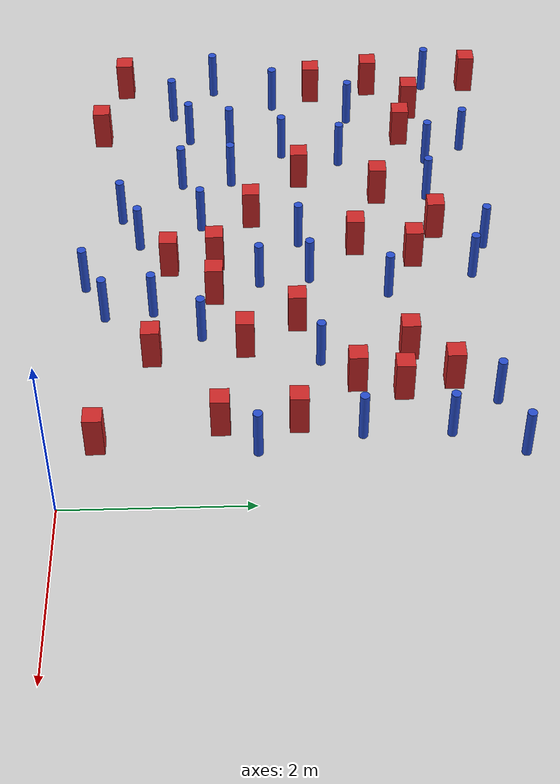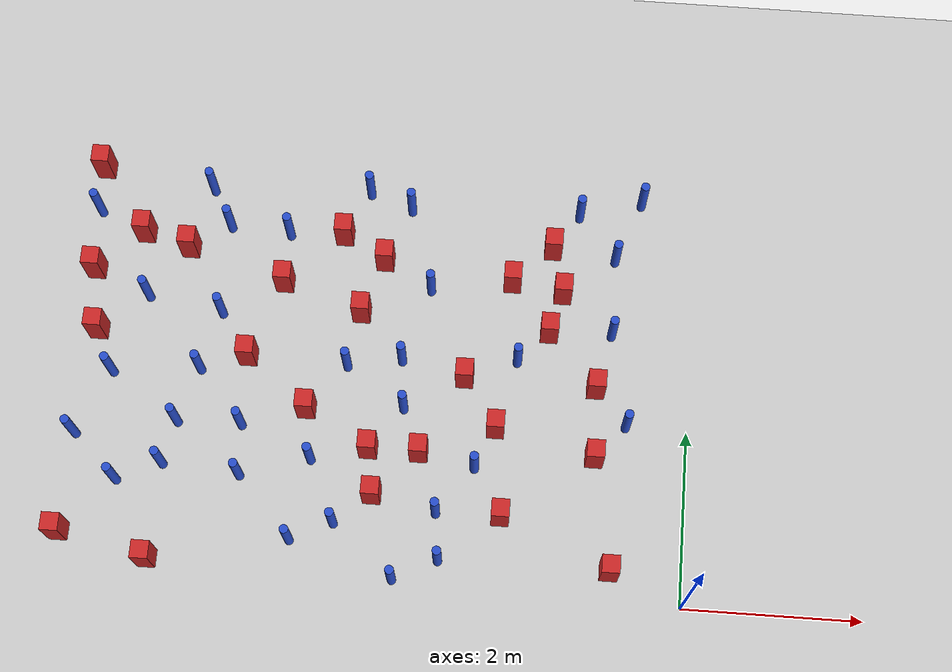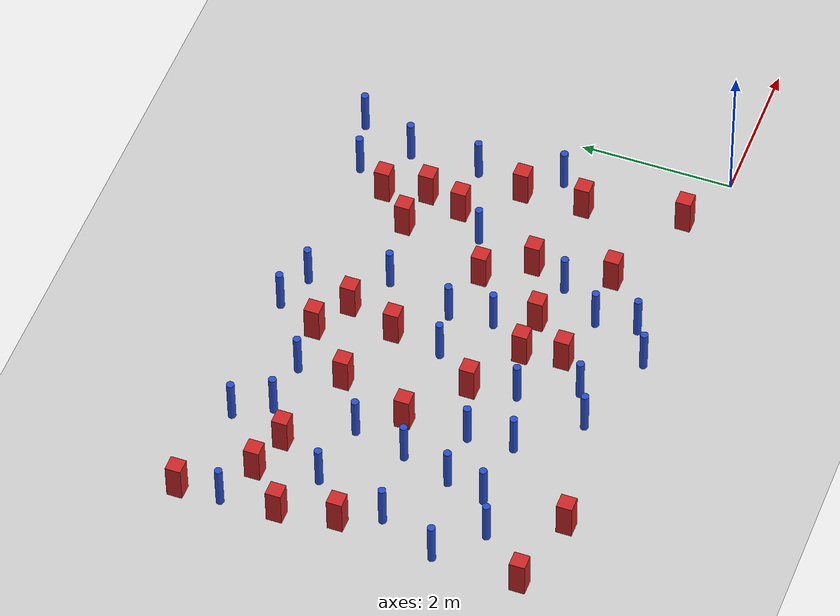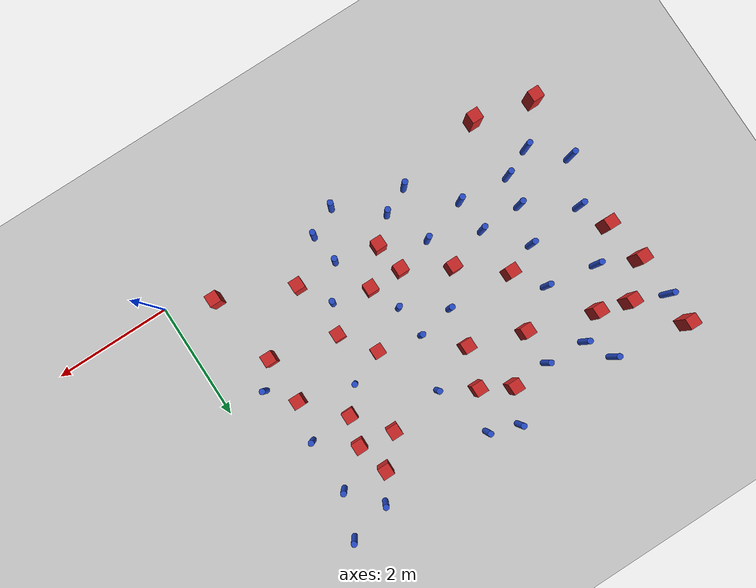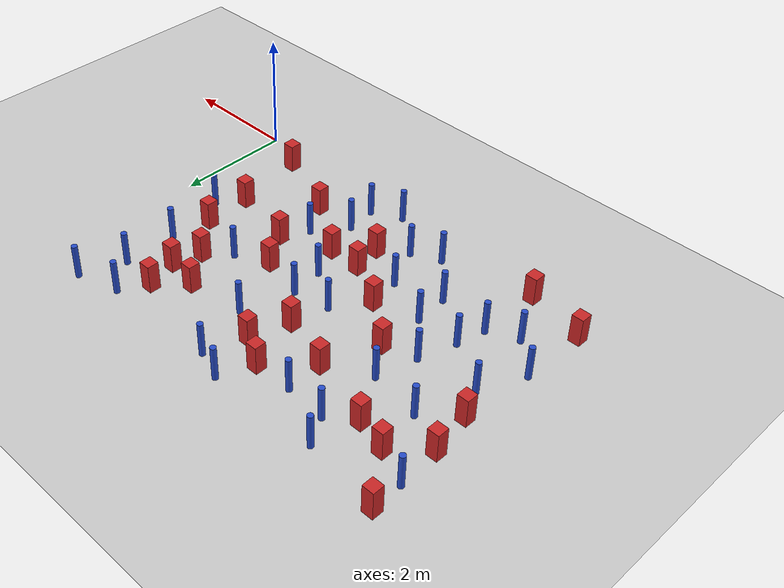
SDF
<sdf version="1.6">
 <world name="default">
  <model name="ground_plane">
   <static>1</static>
   <link name="link">
    <collision name="collision">
     <geometry><plane><normal>0 0 1</normal><size>100 100</size></plane></geometry>
     <surface><friction><ode><mu>100</mu><mu2>50</mu2></ode></friction></surface>
    </collision>
    <visual name="visual">
     <cast_shadows>0</cast_shadows>
     <geometry><plane><normal>0 0 1</normal><size>100 100</size></plane></geometry>
     <material>
      <ambient>1.0 1.0 1.0 1.0</ambient>
      <diffuse>0.8 0.8 0.8 1.0</diffuse>
      <specular>0.01 0.01 0.01 1.000000</specular>
     </material>
    </visual>
   </link>
  </model>
  <model name="square_post_obstacle1">
   <static>true</static>
   <pose>-5.89802046448 0.14127891868 1.91545236811e-07 -7.35059704564e-06 1.12565212e-07 2.39332434364e-05</pose>
   <link name="link">
    <pose>0 0 0.25 0 -0 0</pose>
    <inertial>
     <mass>100</mass>
     <inertia>
      <ixx>0.166667</ixx>
      <ixy>0</ixy>
      <ixz>0</ixz>
      <iyy>0.166667</iyy>
      <iyz>0</iyz>
      <izz>0.166667</izz>
     </inertia>
    </inertial>
    <collision name="collision"><geometry><box><size>.2 .2 .5</size></box></geometry></collision>
    <visual name="visual">
     <geometry><box><size>.2 .2 .5</size></box></geometry>
     <material>
      <script><name>Gazebo/Red</name><uri>file://media/materials/scripts/gazebo.material</uri></script>
     </material>
    </visual>
   </link>
  </model>
  <model name="square_post_obstacle5">
   <static>true</static>
   <pose>-3.56619881664 1.55040309767 1.91545236811e-07 -7.35059704564e-06 1.12565212e-07 2.39332434364e-05</pose>
   <link name="link">
    <pose>0 0 0.25 0 -0 0</pose>
    <inertial>
     <mass>100</mass>
     <inertia>
      <ixx>0.166667</ixx>
      <ixy>0</ixy>
      <ixz>0</ixz>
      <iyy>0.166667</iyy>
      <iyz>0</iyz>
      <izz>0.166667</izz>
     </inertia>
    </inertial>
    <collision name="collision"><geometry><box><size>.2 .2 .5</size></box></geometry></collision>
    <visual name="visual">
     <geometry><box><size>.2 .2 .5</size></box></geometry>
     <material>
      <script><name>Gazebo/Red</name><uri>file://media/materials/scripts/gazebo.material</uri></script>
     </material>
    </visual>
   </link>
  </model>
  <model name="square_post_obstacle10">
   <static>true</static>
   <pose>-1.03120379804 1.62567539473 1.91545236811e-07 -7.35059704564e-06 1.12565212e-07 2.39332434364e-05</pose>
   <link name="link">
    <pose>0 0 0.25 0 -0 0</pose>
    <inertial>
     <mass>100</mass>
     <inertia>
      <ixx>0.166667</ixx>
      <ixy>0</ixy>
      <ixz>0</ixz>
      <iyy>0.166667</iyy>
      <iyz>0</iyz>
      <izz>0.166667</izz>
     </inertia>
    </inertial>
    <collision name="collision"><geometry><box><size>.2 .2 .5</size></box></geometry></collision>
    <visual name="visual">
     <geometry><box><size>.2 .2 .5</size></box></geometry>
     <material>
      <script><name>Gazebo/Red</name><uri>file://media/materials/scripts/gazebo.material</uri></script>
     </material>
    </visual>
   </link>
  </model>
  <model name="square_post_obstacle12">
   <static>true</static>
   <pose>-5.84728091085 3.82834839286 1.91545236811e-07 -7.35059704564e-06 1.12565212e-07 2.39332434364e-05</pose>
   <link name="link">
    <pose>0 0 0.25 0 -0 0</pose>
    <inertial>
     <mass>100</mass>
     <inertia>
      <ixx>0.166667</ixx>
      <ixy>0</ixy>
      <ixz>0</ixz>
      <iyy>0.166667</iyy>
      <iyz>0</iyz>
      <izz>0.166667</izz>
     </inertia>
    </inertial>
    <collision name="collision"><geometry><box><size>.2 .2 .5</size></box></geometry></collision>
    <visual name="visual">
     <geometry><box><size>.2 .2 .5</size></box></geometry>
     <material>
      <script><name>Gazebo/Red</name><uri>file://media/materials/scripts/gazebo.material</uri></script>
     </material>
    </visual>
   </link>
  </model>
  <model name="pole_obstacle8">
   <static>true</static>
   <pose>-2.3621662867 1.4140505157 7.38925637345e-09 -8.471706928e-08 1.24976765152e-08 -1.74513093012e-07</pose>
   <link name="link">
    <pose>0 0 0.3 0 -0 0</pose>
    <inertial>
     <mass>1</mass>
     <inertia><ixx>0.145833</ixx><ixy>0</ixy><ixz>0</ixz><iyy>0.145833</iyy><iyz>0</iyz><izz>0.125</izz></inertia>
    </inertial>
    <collision name="collision">
     <geometry><cylinder><radius>0.05</radius><length>.6</length></cylinder></geometry>
    </collision>
    <visual name="visual">
     <geometry><cylinder><radius>0.05</radius><length>.6</length></cylinder></geometry>
     <material>
      <script><name>Gazebo/Blue</name><uri>file://media/materials/scripts/gazebo.material</uri></script>
     </material>
    </visual>
   </link>
  </model>
  <model name="square_post_obstacle19">
   <static>true</static>
   <pose>-5.0327952547 2.55150173611 1.91545236811e-07 -7.35059704564e-06 1.12565212e-07 2.39332434364e-05</pose>
   <link name="link">
    <pose>0 0 0.25 0 -0 0</pose>
    <inertial>
     <mass>100</mass>
     <inertia>
      <ixx>0.166667</ixx>
      <ixy>0</ixy>
      <ixz>0</ixz>
      <iyy>0.166667</iyy>
      <iyz>0</iyz>
      <izz>0.166667</izz>
     </inertia>
    </inertial>
    <collision name="collision"><geometry><box><size>.2 .2 .5</size></box></geometry></collision>
    <visual name="visual">
     <geometry><box><size>.2 .2 .5</size></box></geometry>
     <material>
      <script><name>Gazebo/Red</name><uri>file://media/materials/scripts/gazebo.material</uri></script>
     </material>
    </visual>
   </link>
  </model>
  <model name="pole_obstacle12">
   <static>true</static>
   <pose>-6.25506210652 3.19610129493 7.38925637345e-09 -8.47170692798e-08 1.24976764937e-08 -1.74513093023e-07</pose>
   <link name="link">
    <pose>0 0 0.3 0 -0 0</pose>
    <inertial>
     <mass>1</mass>
     <inertia><ixx>0.145833</ixx><ixy>0</ixy><ixz>0</ixz><iyy>0.145833</iyy><iyz>0</iyz><izz>0.125</izz></inertia>
    </inertial>
    <collision name="collision">
     <geometry><cylinder><radius>0.05</radius><length>.6</length></cylinder></geometry>
    </collision>
    <visual name="visual">
     <geometry><cylinder><radius>0.05</radius><length>.6</length></cylinder></geometry>
     <material>
      <script><name>Gazebo/Blue</name><uri>file://media/materials/scripts/gazebo.material</uri></script>
     </material>
    </visual>
   </link>
  </model>
  <model name="square_post_obstacle29">
   <static>true</static>
   <pose>-2.07568713311 3.65791688038 1.91545236811e-07 -7.35059704564e-06 1.12565212e-07 2.39332434364e-05</pose>
   <link name="link">
    <pose>0 0 0.25 0 -0 0</pose>
    <inertial>
     <mass>100</mass>
     <inertia>
      <ixx>0.166667</ixx>
      <ixy>0</ixy>
      <ixz>0</ixz>
      <iyy>0.166667</iyy>
      <iyz>0</iyz>
      <izz>0.166667</izz>
     </inertia>
    </inertial>
    <collision name="collision"><geometry><box><size>.2 .2 .5</size></box></geometry></collision>
    <visual name="visual">
     <geometry><box><size>.2 .2 .5</size></box></geometry>
     <material>
      <script><name>Gazebo/Red</name><uri>file://media/materials/scripts/gazebo.material</uri></script>
     </material>
    </visual>
   </link>
  </model>
  <model name="pole_obstacle33">
   <static>true</static>
   <pose>-2.69194967983 0.335135781408 7.38925637345e-09 -8.471706928e-08 1.24976765172e-08 -1.74513093013e-07</pose>
   <link name="link">
    <pose>0 0 0.3 0 -0 0</pose>
    <inertial>
     <mass>1</mass>
     <inertia><ixx>0.145833</ixx><ixy>0</ixy><ixz>0</ixz><iyy>0.145833</iyy><iyz>0</iyz><izz>0.125</izz></inertia>
    </inertial>
    <collision name="collision">
     <geometry><cylinder><radius>0.05</radius><length>.6</length></cylinder></geometry>
    </collision>
    <visual name="visual">
     <geometry><cylinder><radius>0.05</radius><length>.6</length></cylinder></geometry>
     <material>
      <script><name>Gazebo/Blue</name><uri>file://media/materials/scripts/gazebo.material</uri></script>
     </material>
    </visual>
   </link>
  </model>
  <model name="square_post_obstacle36">
   <static>true</static>
   <pose>-0.806339165267 0.348625529439 1.91545236811e-07 -7.35059704564e-06 1.12565212e-07 2.39332434364e-05</pose>
   <link name="link">
    <pose>0 0 0.25 0 -0 0</pose>
    <inertial>
     <mass>100</mass>
     <inertia>
      <ixx>0.166667</ixx>
      <ixy>0</ixy>
      <ixz>0</ixz>
      <iyy>0.166667</iyy>
      <iyz>0</iyz>
      <izz>0.166667</izz>
     </inertia>
    </inertial>
    <collision name="collision"><geometry><box><size>.2 .2 .5</size></box></geometry></collision>
    <visual name="visual">
     <geometry><box><size>.2 .2 .5</size></box></geometry>
     <material>
      <script><name>Gazebo/Red</name><uri>file://media/materials/scripts/gazebo.material</uri></script>
     </material>
    </visual>
   </link>
  </model>
  <model name="pole_obstacle38">
   <static>true</static>
   <pose>-5.38920874787 3.05112737467 7.38925637345e-09 -8.47170692798e-08 1.24976764937e-08 -1.74513093023e-07</pose>
   <link name="link">
    <pose>0 0 0.3 0 -0 0</pose>
    <inertial>
     <mass>1</mass>
     <inertia><ixx>0.145833</ixx><ixy>0</ixy><ixz>0</ixz><iyy>0.145833</iyy><iyz>0</iyz><izz>0.125</izz></inertia>
    </inertial>
    <collision name="collision">
     <geometry><cylinder><radius>0.05</radius><length>.6</length></cylinder></geometry>
    </collision>
    <visual name="visual">
     <geometry><cylinder><radius>0.05</radius><length>.6</length></cylinder></geometry>
     <material>
      <script><name>Gazebo/Blue</name><uri>file://media/materials/scripts/gazebo.material</uri></script>
     </material>
    </visual>
   </link>
  </model>
  <model name="square_post_obstacle40">
   <static>true</static>
   <pose>-4.06551418359 4.10627776106 1.91545236811e-07 -7.35059704564e-06 1.12565212e-07 2.39332434364e-05</pose>
   <link name="link">
    <pose>0 0 0.25 0 -0 0</pose>
    <inertial>
     <mass>100</mass>
     <inertia>
      <ixx>0.166667</ixx>
      <ixy>0</ixy>
      <ixz>0</ixz>
      <iyy>0.166667</iyy>
      <iyz>0</iyz>
      <izz>0.166667</izz>
     </inertia>
    </inertial>
    <collision name="collision"><geometry><box><size>.2 .2 .5</size></box></geometry></collision>
    <visual name="visual">
     <geometry><box><size>.2 .2 .5</size></box></geometry>
     <material>
      <script><name>Gazebo/Red</name><uri>file://media/materials/scripts/gazebo.material</uri></script>
     </material>
    </visual>
   </link>
  </model>
  <model name="pole_obstacle50">
   <static>true</static>
   <pose>-4.98392106543 1.14562655888 7.38925637345e-09 -8.471706928e-08 1.24976765134e-08 -1.74513093015e-07</pose>
   <link name="link">
    <pose>0 0 0.3 0 -0 0</pose>
    <inertial>
     <mass>1</mass>
     <inertia><ixx>0.145833</ixx><ixy>0</ixy><ixz>0</ixz><iyy>0.145833</iyy><iyz>0</iyz><izz>0.125</izz></inertia>
    </inertial>
    <collision name="collision">
     <geometry><cylinder><radius>0.05</radius><length>.6</length></cylinder></geometry>
    </collision>
    <visual name="visual">
     <geometry><cylinder><radius>0.05</radius><length>.6</length></cylinder></geometry>
     <material>
      <script><name>Gazebo/Blue</name><uri>file://media/materials/scripts/gazebo.material</uri></script>
     </material>
    </visual>
   </link>
  </model>
  <model name="square_post_obstacle63">
   <static>true</static>
   <pose>-2.99653288205 1.54797497478 1.91545236811e-07 -7.35059704564e-06 1.12565212e-07 2.39332434364e-05</pose>
   <link name="link">
    <pose>0 0 0.25 0 -0 0</pose>
    <inertial>
     <mass>100</mass>
     <inertia>
      <ixx>0.166667</ixx>
      <ixy>0</ixy>
      <ixz>0</ixz>
      <iyy>0.166667</iyy>
      <iyz>0</iyz>
      <izz>0.166667</izz>
     </inertia>
    </inertial>
    <collision name="collision"><geometry><box><size>.2 .2 .5</size></box></geometry></collision>
    <visual name="visual">
     <geometry><box><size>.2 .2 .5</size></box></geometry>
     <material>
      <script><name>Gazebo/Red</name><uri>file://media/materials/scripts/gazebo.material</uri></script>
     </material>
    </visual>
   </link>
  </model>
  <model name="square_post_obstacle65">
   <static>true</static>
   <pose>-6.96691377876 4.76394677034 1.91545236811e-07 -7.35059704564e-06 1.12565212e-07 2.39332434364e-05</pose>
   <link name="link">
    <pose>0 0 0.25 0 -0 0</pose>
    <inertial>
     <mass>100</mass>
     <inertia>
      <ixx>0.166667</ixx>
      <ixy>0</ixy>
      <ixz>0</ixz>
      <iyy>0.166667</iyy>
      <iyz>0</iyz>
      <izz>0.166667</izz>
     </inertia>
    </inertial>
    <collision name="collision"><geometry><box><size>.2 .2 .5</size></box></geometry></collision>
    <visual name="visual">
     <geometry><box><size>.2 .2 .5</size></box></geometry>
     <material>
      <script><name>Gazebo/Red</name><uri>file://media/materials/scripts/gazebo.material</uri></script>
     </material>
    </visual>
   </link>
  </model>
  <model name="square_post_obstacle71">
   <static>true</static>
   <pose>-6.38737366084 3.98072390192 1.91545236811e-07 -7.35059704564e-06 1.12565212e-07 2.39332434364e-05</pose>
   <link name="link">
    <pose>0 0 0.25 0 -0 0</pose>
    <inertial>
     <mass>100</mass>
     <inertia>
      <ixx>0.166667</ixx>
      <ixy>0</ixy>
      <ixz>0</ixz>
      <iyy>0.166667</iyy>
      <iyz>0</iyz>
      <izz>0.166667</izz>
     </inertia>
    </inertial>
    <collision name="collision"><geometry><box><size>.2 .2 .5</size></box></geometry></collision>
    <visual name="visual">
     <geometry><box><size>.2 .2 .5</size></box></geometry>
     <material>
      <script><name>Gazebo/Red</name><uri>file://media/materials/scripts/gazebo.material</uri></script>
     </material>
    </visual>
   </link>
  </model>
  <model name="pole_obstacle74">
   <static>true</static>
   <pose>-5.65626649433 4.57689478626 7.38925637345e-09 -8.47170692796e-08 1.24976764786e-08 -1.74513093032e-07</pose>
   <link name="link">
    <pose>0 0 0.3 0 -0 0</pose>
    <inertial>
     <mass>1</mass>
     <inertia><ixx>0.145833</ixx><ixy>0</ixy><ixz>0</ixz><iyy>0.145833</iyy><iyz>0</iyz><izz>0.125</izz></inertia>
    </inertial>
    <collision name="collision">
     <geometry><cylinder><radius>0.05</radius><length>.6</length></cylinder></geometry>
    </collision>
    <visual name="visual">
     <geometry><cylinder><radius>0.05</radius><length>.6</length></cylinder></geometry>
     <material>
      <script><name>Gazebo/Blue</name><uri>file://media/materials/scripts/gazebo.material</uri></script>
     </material>
    </visual>
   </link>
  </model>
  <model name="pole_obstacle79">
   <static>true</static>
   <pose>-3.18137896061 0.0899771715534 7.38925637345e-09 -8.47170692794e-08 1.24976764492e-08 -1.74513093038e-07</pose>
   <link name="link">
    <pose>0 0 0.3 0 -0 0</pose>
    <inertial>
     <mass>1</mass>
     <inertia><ixx>0.145833</ixx><ixy>0</ixy><ixz>0</ixz><iyy>0.145833</iyy><iyz>0</iyz><izz>0.125</izz></inertia>
    </inertial>
    <collision name="collision">
     <geometry><cylinder><radius>0.05</radius><length>.6</length></cylinder></geometry>
    </collision>
    <visual name="visual">
     <geometry><cylinder><radius>0.05</radius><length>.6</length></cylinder></geometry>
     <material>
      <script><name>Gazebo/Blue</name><uri>file://media/materials/scripts/gazebo.material</uri></script>
     </material>
    </visual>
   </link>
  </model>
  <model name="pole_obstacle83">
   <static>true</static>
   <pose>-4.35315540006 0.451388426823 7.38925637345e-09 -8.47170692799e-08 1.24976765124e-08 -1.74513093015e-07</pose>
   <link name="link">
    <pose>0 0 0.3 0 -0 0</pose>
    <inertial>
     <mass>1</mass>
     <inertia><ixx>0.145833</ixx><ixy>0</ixy><ixz>0</ixz><iyy>0.145833</iyy><iyz>0</iyz><izz>0.125</izz></inertia>
    </inertial>
    <collision name="collision">
     <geometry><cylinder><radius>0.05</radius><length>.6</length></cylinder></geometry>
    </collision>
    <visual name="visual">
     <geometry><cylinder><radius>0.05</radius><length>.6</length></cylinder></geometry>
     <material>
      <script><name>Gazebo/Blue</name><uri>file://media/materials/scripts/gazebo.material</uri></script>
     </material>
    </visual>
   </link>
  </model>
  <model name="pole_obstacle94">
   <static>true</static>
   <pose>-1.34233454507 4.54161761571 7.38925637345e-09 -8.47170692799e-08 1.24976765033e-08 -1.74513093018e-07</pose>
   <link name="link">
    <pose>0 0 0.3 0 -0 0</pose>
    <inertial>
     <mass>1</mass>
     <inertia><ixx>0.145833</ixx><ixy>0</ixy><ixz>0</ixz><iyy>0.145833</iyy><iyz>0</iyz><izz>0.125</izz></inertia>
    </inertial>
    <collision name="collision">
     <geometry><cylinder><radius>0.05</radius><length>.6</length></cylinder></geometry>
    </collision>
    <visual name="visual">
     <geometry><cylinder><radius>0.05</radius><length>.6</length></cylinder></geometry>
     <material>
      <script><name>Gazebo/Blue</name><uri>file://media/materials/scripts/gazebo.material</uri></script>
     </material>
    </visual>
   </link>
  </model>
  <model name="square_post_obstacle87">
   <static>true</static>
   <pose>-2.15664024649 1.88904400403 1.91545236811e-07 -7.35059704564e-06 1.12565212e-07 2.39332434364e-05</pose>
   <link name="link">
    <pose>0 0 0.25 0 -0 0</pose>
    <inertial>
     <mass>100</mass>
     <inertia>
      <ixx>0.166667</ixx>
      <ixy>0</ixy>
      <ixz>0</ixz>
      <iyy>0.166667</iyy>
      <iyz>0</iyz>
      <izz>0.166667</izz>
     </inertia>
    </inertial>
    <collision name="collision"><geometry><box><size>.2 .2 .5</size></box></geometry></collision>
    <visual name="visual">
     <geometry><box><size>.2 .2 .5</size></box></geometry>
     <material>
      <script><name>Gazebo/Red</name><uri>file://media/materials/scripts/gazebo.material</uri></script>
     </material>
    </visual>
   </link>
  </model>
  <model name="pole_obstacle116">
   <static>true</static>
   <pose>-6.35658932151 0.999298245735 7.38925637345e-09 -8.471706928e-08 1.24976765166e-08 -1.74513093011e-07</pose>
   <link name="link">
    <pose>0 0 0.3 0 -0 0</pose>
    <inertial>
     <mass>1</mass>
     <inertia><ixx>0.145833</ixx><ixy>0</ixy><ixz>0</ixz><iyy>0.145833</iyy><iyz>0</iyz><izz>0.125</izz></inertia>
    </inertial>
    <collision name="collision">
     <geometry><cylinder><radius>0.05</radius><length>.6</length></cylinder></geometry>
    </collision>
    <visual name="visual">
     <geometry><cylinder><radius>0.05</radius><length>.6</length></cylinder></geometry>
     <material>
      <script><name>Gazebo/Blue</name><uri>file://media/materials/scripts/gazebo.material</uri></script>
     </material>
    </visual>
   </link>
  </model>
  <model name="square_post_obstacle105">
   <static>true</static>
   <pose>-6.7815753196 2.75399989633 1.91545236811e-07 -7.35059704564e-06 1.12565212e-07 2.39332434364e-05</pose>
   <link name="link">
    <pose>0 0 0.25 0 -0 0</pose>
    <inertial>
     <mass>100</mass>
     <inertia>
      <ixx>0.166667</ixx>
      <ixy>0</ixy>
      <ixz>0</ixz>
      <iyy>0.166667</iyy>
      <iyz>0</iyz>
      <izz>0.166667</izz>
     </inertia>
    </inertial>
    <collision name="collision"><geometry><box><size>.2 .2 .5</size></box></geometry></collision>
    <visual name="visual">
     <geometry><box><size>.2 .2 .5</size></box></geometry>
     <material>
      <script><name>Gazebo/Red</name><uri>file://media/materials/scripts/gazebo.material</uri></script>
     </material>
    </visual>
   </link>
  </model>
  <model name="pole_obstacle129">
   <static>true</static>
   <pose>-6.5558696661 2.25894573723 7.38925637345e-09 -8.47170692798e-08 1.24976764937e-08 -1.74513093023e-07</pose>
   <link name="link">
    <pose>0 0 0.3 0 -0 0</pose>
    <inertial>
     <mass>1</mass>
     <inertia><ixx>0.145833</ixx><ixy>0</ixy><ixz>0</ixz><iyy>0.145833</iyy><iyz>0</iyz><izz>0.125</izz></inertia>
    </inertial>
    <collision name="collision">
     <geometry><cylinder><radius>0.05</radius><length>.6</length></cylinder></geometry>
    </collision>
    <visual name="visual">
     <geometry><cylinder><radius>0.05</radius><length>.6</length></cylinder></geometry>
     <material>
      <script><name>Gazebo/Blue</name><uri>file://media/materials/scripts/gazebo.material</uri></script>
     </material>
    </visual>
   </link>
  </model>
  <model name="square_post_obstacle116">
   <static>true</static>
   <pose>-1.63072883937 4.09948157398 1.91545236811e-07 -7.35059704564e-06 1.12565212e-07 2.39332434364e-05</pose>
   <link name="link">
    <pose>0 0 0.25 0 -0 0</pose>
    <inertial>
     <mass>100</mass>
     <inertia>
      <ixx>0.166667</ixx>
      <ixy>0</ixy>
      <ixz>0</ixz>
      <iyy>0.166667</iyy>
      <iyz>0</iyz>
      <izz>0.166667</izz>
     </inertia>
    </inertial>
    <collision name="collision"><geometry><box><size>.2 .2 .5</size></box></geometry></collision>
    <visual name="visual">
     <geometry><box><size>.2 .2 .5</size></box></geometry>
     <material>
      <script><name>Gazebo/Red</name><uri>file://media/materials/scripts/gazebo.material</uri></script>
     </material>
    </visual>
   </link>
  </model>
  <model name="pole_obstacle137">
   <static>true</static>
   <pose>-3.2091529136 2.05357644707 7.38925637345e-09 -8.471706928e-08 1.24976765098e-08 -1.74513093016e-07</pose>
   <link name="link">
    <pose>0 0 0.3 0 -0 0</pose>
    <inertial>
     <mass>1</mass>
     <inertia><ixx>0.145833</ixx><ixy>0</ixy><ixz>0</ixz><iyy>0.145833</iyy><iyz>0</iyz><izz>0.125</izz></inertia>
    </inertial>
    <collision name="collision">
     <geometry><cylinder><radius>0.05</radius><length>.6</length></cylinder></geometry>
    </collision>
    <visual name="visual">
     <geometry><cylinder><radius>0.05</radius><length>.6</length></cylinder></geometry>
     <material>
      <script><name>Gazebo/Blue</name><uri>file://media/materials/scripts/gazebo.material</uri></script>
     </material>
    </visual>
   </link>
  </model>
  <model name="pole_obstacle139">
   <static>true</static>
   <pose>-0.625194905554 4.74342718994 7.38925637345e-09 -8.471706928e-08 1.24976765086e-08 -1.74513093015e-07</pose>
   <link name="link">
    <pose>0 0 0.3 0 -0 0</pose>
    <inertial>
     <mass>1</mass>
     <inertia><ixx>0.145833</ixx><ixy>0</ixy><ixz>0</ixz><iyy>0.145833</iyy><iyz>0</iyz><izz>0.125</izz></inertia>
    </inertial>
    <collision name="collision">
     <geometry><cylinder><radius>0.05</radius><length>.6</length></cylinder></geometry>
    </collision>
    <visual name="visual">
     <geometry><cylinder><radius>0.05</radius><length>.6</length></cylinder></geometry>
     <material>
      <script><name>Gazebo/Blue</name><uri>file://media/materials/scripts/gazebo.material</uri></script>
     </material>
    </visual>
   </link>
  </model>
  <model name="square_post_obstacle124">
   <static>true</static>
   <pose>-4.30556201068 1.97046679576 1.91545236811e-07 -7.35059704564e-06 1.12565212e-07 2.39332434364e-05</pose>
   <link name="link">
    <pose>0 0 0.25 0 -0 0</pose>
    <inertial>
     <mass>100</mass>
     <inertia>
      <ixx>0.166667</ixx>
      <ixy>0</ixy>
      <ixz>0</ixz>
      <iyy>0.166667</iyy>
      <iyz>0</iyz>
      <izz>0.166667</izz>
     </inertia>
    </inertial>
    <collision name="collision"><geometry><box><size>.2 .2 .5</size></box></geometry></collision>
    <visual name="visual">
     <geometry><box><size>.2 .2 .5</size></box></geometry>
     <material>
      <script><name>Gazebo/Red</name><uri>file://media/materials/scripts/gazebo.material</uri></script>
     </material>
    </visual>
   </link>
  </model>
  <model name="square_post_obstacle125">
   <static>true</static>
   <pose>-1.05272874823 2.43726188475 1.91545236811e-07 -7.35059704564e-06 1.12565212e-07 2.39332434364e-05</pose>
   <link name="link">
    <pose>0 0 0.25 0 -0 0</pose>
    <inertial>
     <mass>100</mass>
     <inertia>
      <ixx>0.166667</ixx>
      <ixy>0</ixy>
      <ixz>0</ixz>
      <iyy>0.166667</iyy>
      <iyz>0</iyz>
      <izz>0.166667</izz>
     </inertia>
    </inertial>
    <collision name="collision"><geometry><box><size>.2 .2 .5</size></box></geometry></collision>
    <visual name="visual">
     <geometry><box><size>.2 .2 .5</size></box></geometry>
     <material>
      <script><name>Gazebo/Red</name><uri>file://media/materials/scripts/gazebo.material</uri></script>
     </material>
    </visual>
   </link>
  </model>
  <model name="pole_obstacle140">
   <static>true</static>
   <pose>-1.95937132909 2.69806054556 7.38925637345e-09 -8.471706928e-08 1.24976765192e-08 -1.7451309301e-07</pose>
   <link name="link">
    <pose>0 0 0.3 0 -0 0</pose>
    <inertial>
     <mass>1</mass>
     <inertia><ixx>0.145833</ixx><ixy>0</ixy><ixz>0</ixz><iyy>0.145833</iyy><iyz>0</iyz><izz>0.125</izz></inertia>
    </inertial>
    <collision name="collision">
     <geometry><cylinder><radius>0.05</radius><length>.6</length></cylinder></geometry>
    </collision>
    <visual name="visual">
     <geometry><cylinder><radius>0.05</radius><length>.6</length></cylinder></geometry>
     <material>
      <script><name>Gazebo/Blue</name><uri>file://media/materials/scripts/gazebo.material</uri></script>
     </material>
    </visual>
   </link>
  </model>
  <model name="pole_obstacle143">
   <static>true</static>
   <pose>-5.75045989783 1.71898323493 7.38925637345e-09 -8.471706928e-08 1.24976765134e-08 -1.74513093015e-07</pose>
   <link name="link">
    <pose>0 0 0.3 0 -0 0</pose>
    <inertial>
     <mass>1</mass>
     <inertia><ixx>0.145833</ixx><ixy>0</ixy><ixz>0</ixz><iyy>0.145833</iyy><iyz>0</iyz><izz>0.125</izz></inertia>
    </inertial>
    <collision name="collision">
     <geometry><cylinder><radius>0.05</radius><length>.6</length></cylinder></geometry>
    </collision>
    <visual name="visual">
     <geometry><cylinder><radius>0.05</radius><length>.6</length></cylinder></geometry>
     <material>
      <script><name>Gazebo/Blue</name><uri>file://media/materials/scripts/gazebo.material</uri></script>
     </material>
    </visual>
   </link>
  </model>
  <model name="square_post_obstacle136">
   <static>true</static>
   <pose>-6.90911771019 3.49146051048 1.91545236811e-07 -7.35059704564e-06 1.12565212e-07 2.39332434364e-05</pose>
   <link name="link">
    <pose>0 0 0.25 0 -0 0</pose>
    <inertial>
     <mass>100</mass>
     <inertia>
      <ixx>0.166667</ixx>
      <ixy>0</ixy>
      <ixz>0</ixz>
      <iyy>0.166667</iyy>
      <iyz>0</iyz>
      <izz>0.166667</izz>
     </inertia>
    </inertial>
    <collision name="collision"><geometry><box><size>.2 .2 .5</size></box></geometry></collision>
    <visual name="visual">
     <geometry><box><size>.2 .2 .5</size></box></geometry>
     <material>
      <script><name>Gazebo/Red</name><uri>file://media/materials/scripts/gazebo.material</uri></script>
     </material>
    </visual>
   </link>
  </model>
  <model name="pole_obstacle150">
   <static>true</static>
   <pose>-3.2723722878 2.62163641383 7.38925637345e-09 -8.47170692798e-08 1.24976764939e-08 -1.74513093025e-07</pose>
   <link name="link">
    <pose>0 0 0.3 0 -0 0</pose>
    <inertial>
     <mass>1</mass>
     <inertia><ixx>0.145833</ixx><ixy>0</ixy><ixz>0</ixz><iyy>0.145833</iyy><iyz>0</iyz><izz>0.125</izz></inertia>
    </inertial>
    <collision name="collision">
     <geometry><cylinder><radius>0.05</radius><length>.6</length></cylinder></geometry>
    </collision>
    <visual name="visual">
     <geometry><cylinder><radius>0.05</radius><length>.6</length></cylinder></geometry>
     <material>
      <script><name>Gazebo/Blue</name><uri>file://media/materials/scripts/gazebo.material</uri></script>
     </material>
    </visual>
   </link>
  </model>
  <model name="square_post_obstacle142">
   <static>true</static>
   <pose>-3.56682781437 3.82021896471 1.91545236811e-07 -7.35059704564e-06 1.12565212e-07 2.39332434364e-05</pose>
   <link name="link">
    <pose>0 0 0.25 0 -0 0</pose>
    <inertial>
     <mass>100</mass>
     <inertia>
      <ixx>0.166667</ixx>
      <ixy>0</ixy>
      <ixz>0</ixz>
      <iyy>0.166667</iyy>
      <iyz>0</iyz>
      <izz>0.166667</izz>
     </inertia>
    </inertial>
    <collision name="collision"><geometry><box><size>.2 .2 .5</size></box></geometry></collision>
    <visual name="visual">
     <geometry><box><size>.2 .2 .5</size></box></geometry>
     <material>
      <script><name>Gazebo/Red</name><uri>file://media/materials/scripts/gazebo.material</uri></script>
     </material>
    </visual>
   </link>
  </model>
  <model name="pole_obstacle154">
   <static>true</static>
   <pose>-3.00830110088 3.50284523727 7.38925637345e-09 -8.47170692798e-08 1.24976764939e-08 -1.74513093025e-07</pose>
   <link name="link">
    <pose>0 0 0.3 0 -0 0</pose>
    <inertial>
     <mass>1</mass>
     <inertia><ixx>0.145833</ixx><ixy>0</ixy><ixz>0</ixz><iyy>0.145833</iyy><iyz>0</iyz><izz>0.125</izz></inertia>
    </inertial>
    <collision name="collision">
     <geometry><cylinder><radius>0.05</radius><length>.6</length></cylinder></geometry>
    </collision>
    <visual name="visual">
     <geometry><cylinder><radius>0.05</radius><length>.6</length></cylinder></geometry>
     <material>
      <script><name>Gazebo/Blue</name><uri>file://media/materials/scripts/gazebo.material</uri></script>
     </material>
    </visual>
   </link>
  </model>
  <model name="square_post_obstacle150">
   <static>true</static>
   <pose>-6.911849789 0.376636833776 1.91545236811e-07 -7.35059704564e-06 1.12565212e-07 2.39332434364e-05</pose>
   <link name="link">
    <pose>0 0 0.25 0 -0 0</pose>
    <inertial>
     <mass>100</mass>
     <inertia>
      <ixx>0.166667</ixx>
      <ixy>0</ixy>
      <ixz>0</ixz>
      <iyy>0.166667</iyy>
      <iyz>0</iyz>
      <izz>0.166667</izz>
     </inertia>
    </inertial>
    <collision name="collision"><geometry><box><size>.2 .2 .5</size></box></geometry></collision>
    <visual name="visual">
     <geometry><box><size>.2 .2 .5</size></box></geometry>
     <material>
      <script><name>Gazebo/Red</name><uri>file://media/materials/scripts/gazebo.material</uri></script>
     </material>
    </visual>
   </link>
  </model>
  <model name="pole_obstacle161">
   <static>true</static>
   <pose>-6.94879399547 4.21399882412 7.38925637345e-09 -8.47170692796e-08 1.24976764786e-08 -1.74513093032e-07</pose>
   <link name="link">
    <pose>0 0 0.3 0 -0 0</pose>
    <inertial>
     <mass>1</mass>
     <inertia><ixx>0.145833</ixx><ixy>0</ixy><ixz>0</ixz><iyy>0.145833</iyy><iyz>0</iyz><izz>0.125</izz></inertia>
    </inertial>
    <collision name="collision">
     <geometry><cylinder><radius>0.05</radius><length>.6</length></cylinder></geometry>
    </collision>
    <visual name="visual">
     <geometry><cylinder><radius>0.05</radius><length>.6</length></cylinder></geometry>
     <material>
      <script><name>Gazebo/Blue</name><uri>file://media/materials/scripts/gazebo.material</uri></script>
     </material>
    </visual>
   </link>
  </model>
  <model name="pole_obstacle170">
   <static>true</static>
   <pose>-0.691239499996 2.01063745899 7.38925637345e-09 -8.47170692799e-08 1.24976765e-08 -1.7451309302e-07</pose>
   <link name="link">
    <pose>0 0 0.3 0 -0 0</pose>
    <inertial>
     <mass>1</mass>
     <inertia><ixx>0.145833</ixx><ixy>0</ixy><ixz>0</ixz><iyy>0.145833</iyy><iyz>0</iyz><izz>0.125</izz></inertia>
    </inertial>
    <collision name="collision">
     <geometry><cylinder><radius>0.05</radius><length>.6</length></cylinder></geometry>
    </collision>
    <visual name="visual">
     <geometry><cylinder><radius>0.05</radius><length>.6</length></cylinder></geometry>
     <material>
      <script><name>Gazebo/Blue</name><uri>file://media/materials/scripts/gazebo.material</uri></script>
     </material>
    </visual>
   </link>
  </model>
  <model name="square_post_obstacle169">
   <static>true</static>
   <pose>-2.037246804 0.881666179824 1.91545236811e-07 -7.35059704564e-06 1.12565212e-07 2.39332434364e-05</pose>
   <link name="link">
    <pose>0 0 0.25 0 -0 0</pose>
    <inertial>
     <mass>100</mass>
     <inertia>
      <ixx>0.166667</ixx>
      <ixy>0</ixy>
      <ixz>0</ixz>
      <iyy>0.166667</iyy>
      <iyz>0</iyz>
      <izz>0.166667</izz>
     </inertia>
    </inertial>
    <collision name="collision"><geometry><box><size>.2 .2 .5</size></box></geometry></collision>
    <visual name="visual">
     <geometry><box><size>.2 .2 .5</size></box></geometry>
     <material>
      <script><name>Gazebo/Red</name><uri>file://media/materials/scripts/gazebo.material</uri></script>
     </material>
    </visual>
   </link>
  </model>
  <model name="square_post_obstacle170">
   <static>true</static>
   <pose>-3.78498654709 3.16411555813 1.91545236811e-07 -7.35059704564e-06 1.12565212e-07 2.39332434364e-05</pose>
   <link name="link">
    <pose>0 0 0.25 0 -0 0</pose>
    <inertial>
     <mass>100</mass>
     <inertia>
      <ixx>0.166667</ixx>
      <ixy>0</ixy>
      <ixz>0</ixz>
      <iyy>0.166667</iyy>
      <iyz>0</iyz>
      <izz>0.166667</izz>
     </inertia>
    </inertial>
    <collision name="collision"><geometry><box><size>.2 .2 .5</size></box></geometry></collision>
    <visual name="visual">
     <geometry><box><size>.2 .2 .5</size></box></geometry>
     <material>
      <script><name>Gazebo/Red</name><uri>file://media/materials/scripts/gazebo.material</uri></script>
     </material>
    </visual>
   </link>
  </model>
  <model name="pole_obstacle182">
   <static>true</static>
   <pose>-4.70533285243 4.07720902889 7.38925637345e-09 -8.47170692796e-08 1.24976764786e-08 -1.74513093032e-07</pose>
   <link name="link">
    <pose>0 0 0.3 0 -0 0</pose>
    <inertial>
     <mass>1</mass>
     <inertia><ixx>0.145833</ixx><ixy>0</ixy><ixz>0</ixz><iyy>0.145833</iyy><iyz>0</iyz><izz>0.125</izz></inertia>
    </inertial>
    <collision name="collision">
     <geometry><cylinder><radius>0.05</radius><length>.6</length></cylinder></geometry>
    </collision>
    <visual name="visual">
     <geometry><cylinder><radius>0.05</radius><length>.6</length></cylinder></geometry>
     <material>
      <script><name>Gazebo/Blue</name><uri>file://media/materials/scripts/gazebo.material</uri></script>
     </material>
    </visual>
   </link>
  </model>
  <model name="pole_obstacle183">
   <static>true</static>
   <pose>-0.901403143343 4.01254233929 7.38925637345e-09 -8.47170692799e-08 1.24976765074e-08 -1.74513093016e-07</pose>
   <link name="link">
    <pose>0 0 0.3 0 -0 0</pose>
    <inertial>
     <mass>1</mass>
     <inertia><ixx>0.145833</ixx><ixy>0</ixy><ixz>0</ixz><iyy>0.145833</iyy><iyz>0</iyz><izz>0.125</izz></inertia>
    </inertial>
    <collision name="collision">
     <geometry><cylinder><radius>0.05</radius><length>.6</length></cylinder></geometry>
    </collision>
    <visual name="visual">
     <geometry><cylinder><radius>0.05</radius><length>.6</length></cylinder></geometry>
     <material>
      <script><name>Gazebo/Blue</name><uri>file://media/materials/scripts/gazebo.material</uri></script>
     </material>
    </visual>
   </link>
  </model>
  <model name="pole_obstacle186">
   <static>true</static>
   <pose>-4.20280983305 1.38398708081 7.38925637345e-09 -8.471706928e-08 1.24976765134e-08 -1.74513093015e-07</pose>
   <link name="link">
    <pose>0 0 0.3 0 -0 0</pose>
    <inertial>
     <mass>1</mass>
     <inertia><ixx>0.145833</ixx><ixy>0</ixy><ixz>0</ixz><iyy>0.145833</iyy><iyz>0</iyz><izz>0.125</izz></inertia>
    </inertial>
    <collision name="collision">
     <geometry><cylinder><radius>0.05</radius><length>.6</length></cylinder></geometry>
    </collision>
    <visual name="visual">
     <geometry><cylinder><radius>0.05</radius><length>.6</length></cylinder></geometry>
     <material>
      <script><name>Gazebo/Blue</name><uri>file://media/materials/scripts/gazebo.material</uri></script>
     </material>
    </visual>
   </link>
  </model>
  <model name="square_post_obstacle173">
   <static>true</static>
   <pose>-1.61812183526 3.07087651231 1.91545236811e-07 -7.35059704564e-06 1.12565212e-07 2.39332434364e-05</pose>
   <link name="link">
    <pose>0 0 0.25 0 -0 0</pose>
    <inertial>
     <mass>100</mass>
     <inertia>
      <ixx>0.166667</ixx>
      <ixy>0</ixy>
      <ixz>0</ixz>
      <iyy>0.166667</iyy>
      <iyz>0</iyz>
      <izz>0.166667</izz>
     </inertia>
    </inertial>
    <collision name="collision"><geometry><box><size>.2 .2 .5</size></box></geometry></collision>
    <visual name="visual">
     <geometry><box><size>.2 .2 .5</size></box></geometry>
     <material>
      <script><name>Gazebo/Red</name><uri>file://media/materials/scripts/gazebo.material</uri></script>
     </material>
    </visual>
   </link>
  </model>
  <model name="square_post_obstacle176">
   <static>true</static>
   <pose>-3.4798928713 1.03067810156 1.91545236811e-07 -7.35059704564e-06 1.12565212e-07 2.39332434364e-05</pose>
   <link name="link">
    <pose>0 0 0.25 0 -0 0</pose>
    <inertial>
     <mass>100</mass>
     <inertia>
      <ixx>0.166667</ixx>
      <ixy>0</ixy>
      <ixz>0</ixz>
      <iyy>0.166667</iyy>
      <iyz>0</iyz>
      <izz>0.166667</izz>
     </inertia>
    </inertial>
    <collision name="collision"><geometry><box><size>.2 .2 .5</size></box></geometry></collision>
    <visual name="visual">
     <geometry><box><size>.2 .2 .5</size></box></geometry>
     <material>
      <script><name>Gazebo/Red</name><uri>file://media/materials/scripts/gazebo.material</uri></script>
     </material>
    </visual>
   </link>
  </model>
  <model name="square_post_obstacle177">
   <static>true</static>
   <pose>-1.48933515789 3.5561002502 1.91545236811e-07 -7.35059704564e-06 1.12565212e-07 2.39332434364e-05</pose>
   <link name="link">
    <pose>0 0 0.25 0 -0 0</pose>
    <inertial>
     <mass>100</mass>
     <inertia>
      <ixx>0.166667</ixx>
      <ixy>0</ixy>
      <ixz>0</ixz>
      <iyy>0.166667</iyy>
      <iyz>0</iyz>
      <izz>0.166667</izz>
     </inertia>
    </inertial>
    <collision name="collision"><geometry><box><size>.2 .2 .5</size></box></geometry></collision>
    <visual name="visual">
     <geometry><box><size>.2 .2 .5</size></box></geometry>
     <material>
      <script><name>Gazebo/Red</name><uri>file://media/materials/scripts/gazebo.material</uri></script>
     </material>
    </visual>
   </link>
  </model>
  <model name="square_post_obstacle188">
   <static>true</static>
   <pose>-2.54574356265 2.46075734821 1.91545236811e-07 -7.35059704564e-06 1.12565212e-07 2.39332434364e-05</pose>
   <link name="link">
    <pose>0 0 0.25 0 -0 0</pose>
    <inertial>
     <mass>100</mass>
     <inertia>
      <ixx>0.166667</ixx>
      <ixy>0</ixy>
      <ixz>0</ixz>
      <iyy>0.166667</iyy>
      <iyz>0</iyz>
      <izz>0.166667</izz>
     </inertia>
    </inertial>
    <collision name="collision"><geometry><box><size>.2 .2 .5</size></box></geometry></collision>
    <visual name="visual">
     <geometry><box><size>.2 .2 .5</size></box></geometry>
     <material>
      <script><name>Gazebo/Red</name><uri>file://media/materials/scripts/gazebo.material</uri></script>
     </material>
    </visual>
   </link>
  </model>
  <model name="square_post_obstacle198">
   <static>true</static>
   <pose>-4.70649810593 3.47607140479 1.91545236811e-07 -7.35059704564e-06 1.12565212e-07 2.39332434364e-05</pose>
   <link name="link">
    <pose>0 0 0.25 0 -0 0</pose>
    <inertial>
     <mass>100</mass>
     <inertia>
      <ixx>0.166667</ixx>
      <ixy>0</ixy>
      <ixz>0</ixz>
      <iyy>0.166667</iyy>
      <iyz>0</iyz>
      <izz>0.166667</izz>
     </inertia>
    </inertial>
    <collision name="collision"><geometry><box><size>.2 .2 .5</size></box></geometry></collision>
    <visual name="visual">
     <geometry><box><size>.2 .2 .5</size></box></geometry>
     <material>
      <script><name>Gazebo/Red</name><uri>file://media/materials/scripts/gazebo.material</uri></script>
     </material>
    </visual>
   </link>
  </model>
  <model name="pole_obstacle203">
   <static>true</static>
   <pose>-0.900293954737 3.09222732279 7.38925637345e-09 -8.47170692799e-08 1.2497676509e-08 -1.74513093016e-07</pose>
   <link name="link">
    <pose>0 0 0.3 0 -0 0</pose>
    <inertial>
     <mass>1</mass>
     <inertia><ixx>0.145833</ixx><ixy>0</ixy><ixz>0</ixz><iyy>0.145833</iyy><iyz>0</iyz><izz>0.125</izz></inertia>
    </inertial>
    <collision name="collision">
     <geometry><cylinder><radius>0.05</radius><length>.6</length></cylinder></geometry>
    </collision>
    <visual name="visual">
     <geometry><cylinder><radius>0.05</radius><length>.6</length></cylinder></geometry>
     <material>
      <script><name>Gazebo/Blue</name><uri>file://media/materials/scripts/gazebo.material</uri></script>
     </material>
    </visual>
   </link>
  </model>
  <model name="pole_obstacle209">
   <static>true</static>
   <pose>-5.40453599778 4.12568491766 7.38925637345e-09 -8.47170692796e-08 1.24976764786e-08 -1.74513093032e-07</pose>
   <link name="link">
    <pose>0 0 0.3 0 -0 0</pose>
    <inertial>
     <mass>1</mass>
     <inertia><ixx>0.145833</ixx><ixy>0</ixy><ixz>0</ixz><iyy>0.145833</iyy><iyz>0</iyz><izz>0.125</izz></inertia>
    </inertial>
    <collision name="collision">
     <geometry><cylinder><radius>0.05</radius><length>.6</length></cylinder></geometry>
    </collision>
    <visual name="visual">
     <geometry><cylinder><radius>0.05</radius><length>.6</length></cylinder></geometry>
     <material>
      <script><name>Gazebo/Blue</name><uri>file://media/materials/scripts/gazebo.material</uri></script>
     </material>
    </visual>
   </link>
  </model>
  <model name="pole_obstacle213">
   <static>true</static>
   <pose>-3.80790357845 4.66324856711 7.38925637345e-09 -8.47170692798e-08 1.24976765033e-08 -1.74513093019e-07</pose>
   <link name="link">
    <pose>0 0 0.3 0 -0 0</pose>
    <inertial>
     <mass>1</mass>
     <inertia><ixx>0.145833</ixx><ixy>0</ixy><ixz>0</ixz><iyy>0.145833</iyy><iyz>0</iyz><izz>0.125</izz></inertia>
    </inertial>
    <collision name="collision">
     <geometry><cylinder><radius>0.05</radius><length>.6</length></cylinder></geometry>
    </collision>
    <visual name="visual">
     <geometry><cylinder><radius>0.05</radius><length>.6</length></cylinder></geometry>
     <material>
      <script><name>Gazebo/Blue</name><uri>file://media/materials/scripts/gazebo.material</uri></script>
     </material>
    </visual>
   </link>
  </model>
  <model name="pole_obstacle216">
   <static>true</static>
   <pose>-6.88622649268 1.50407118331 7.38925637345e-09 -8.471706928e-08 1.24976765134e-08 -1.74513093015e-07</pose>
   <link name="link">
    <pose>0 0 0.3 0 -0 0</pose>
    <inertial>
     <mass>1</mass>
     <inertia><ixx>0.145833</ixx><ixy>0</ixy><ixz>0</ixz><iyy>0.145833</iyy><iyz>0</iyz><izz>0.125</izz></inertia>
    </inertial>
    <collision name="collision">
     <geometry><cylinder><radius>0.05</radius><length>.6</length></cylinder></geometry>
    </collision>
    <visual name="visual">
     <geometry><cylinder><radius>0.05</radius><length>.6</length></cylinder></geometry>
     <material>
      <script><name>Gazebo/Blue</name><uri>file://media/materials/scripts/gazebo.material</uri></script>
     </material>
    </visual>
   </link>
  </model>
  <model name="pole_obstacle221">
   <static>true</static>
   <pose>-5.86027496592 1.21982072244 7.38925637345e-09 -8.471706928e-08 1.24976765134e-08 -1.74513093015e-07</pose>
   <link name="link">
    <pose>0 0 0.3 0 -0 0</pose>
    <inertial>
     <mass>1</mass>
     <inertia><ixx>0.145833</ixx><ixy>0</ixy><ixz>0</ixz><iyy>0.145833</iyy><iyz>0</iyz><izz>0.125</izz></inertia>
    </inertial>
    <collision name="collision">
     <geometry><cylinder><radius>0.05</radius><length>.6</length></cylinder></geometry>
    </collision>
    <visual name="visual">
     <geometry><cylinder><radius>0.05</radius><length>.6</length></cylinder></geometry>
     <material>
      <script><name>Gazebo/Blue</name><uri>file://media/materials/scripts/gazebo.material</uri></script>
     </material>
    </visual>
   </link>
  </model>
  <model name="pole_obstacle230">
   <static>true</static>
   <pose>-2.75606999043 0.868673020781 7.38925637345e-09 -8.47170692796e-08 1.24976764768e-08 -1.74513093035e-07</pose>
   <link name="link">
    <pose>0 0 0.3 0 -0 0</pose>
    <inertial>
     <mass>1</mass>
     <inertia><ixx>0.145833</ixx><ixy>0</ixy><ixz>0</ixz><iyy>0.145833</iyy><iyz>0</iyz><izz>0.125</izz></inertia>
    </inertial>
    <collision name="collision">
     <geometry><cylinder><radius>0.05</radius><length>.6</length></cylinder></geometry>
    </collision>
    <visual name="visual">
     <geometry><cylinder><radius>0.05</radius><length>.6</length></cylinder></geometry>
     <material>
      <script><name>Gazebo/Blue</name><uri>file://media/materials/scripts/gazebo.material</uri></script>
     </material>
    </visual>
   </link>
  </model>
  <model name="pole_obstacle235">
   <static>true</static>
   <pose>-3.88348999043 0.673884020781 7.38925637345e-09 -8.47170692801e-08 1.2497676512e-08 -1.74513093015e-07</pose>
   <link name="link">
    <pose>0 0 0.3 0 -0 0</pose>
    <inertial>
     <mass>1</mass>
     <inertia><ixx>0.145833</ixx><ixy>0</ixy><ixz>0</ixz><iyy>0.145833</iyy><iyz>0</iyz><izz>0.125</izz></inertia>
    </inertial>
    <collision name="collision">
     <geometry><cylinder><radius>0.05</radius><length>.6</length></cylinder></geometry>
    </collision>
    <visual name="visual">
     <geometry><cylinder><radius>0.05</radius><length>.6</length></cylinder></geometry>
     <material>
      <script><name>Gazebo/Blue</name><uri>file://media/materials/scripts/gazebo.material</uri></script>
     </material>
    </visual>
   </link>
  </model>
  <model name="pole_obstacle240">
   <static>true</static>
   <pose>-5.55784999043 2.35634002078 7.38925637345e-09 -8.47170692799e-08 1.24976765028e-08 -1.74513093019e-07</pose>
   <link name="link">
    <pose>0 0 0.3 0 -0 0</pose>
    <inertial>
     <mass>1</mass>
     <inertia><ixx>0.145833</ixx><ixy>0</ixy><ixz>0</ixz><iyy>0.145833</iyy><iyz>0</iyz><izz>0.125</izz></inertia>
    </inertial>
    <collision name="collision">
     <geometry><cylinder><radius>0.05</radius><length>.6</length></cylinder></geometry>
    </collision>
    <visual name="visual">
     <geometry><cylinder><radius>0.05</radius><length>.6</length></cylinder></geometry>
     <material>
      <script><name>Gazebo/Blue</name><uri>file://media/materials/scripts/gazebo.material</uri></script>
     </material>
    </visual>
   </link>
  </model>
  <model name="pole_obstacle248">
   <static>true</static>
   <pose>-3.31004999043 4.48389002078 7.38925637345e-09 -8.47170692794e-08 1.24976764468e-08 -1.7451309304e-07</pose>
   <link name="link">
    <pose>0 0 0.3 0 -0 0</pose>
    <inertial>
     <mass>1</mass>
     <inertia><ixx>0.145833</ixx><ixy>0</ixy><ixz>0</ixz><iyy>0.145833</iyy><iyz>0</iyz><izz>0.125</izz></inertia>
    </inertial>
    <collision name="collision">
     <geometry><cylinder><radius>0.05</radius><length>.6</length></cylinder></geometry>
    </collision>
    <visual name="visual">
     <geometry><cylinder><radius>0.05</radius><length>.6</length></cylinder></geometry>
     <material>
      <script><name>Gazebo/Blue</name><uri>file://media/materials/scripts/gazebo.material</uri></script>
     </material>
    </visual>
   </link>
  </model>
  <model name="pole_obstacle249">
   <static>true</static>
   <pose>-3.89069999043 2.51234002078 7.38925637345e-09 -8.47170692798e-08 1.24976764939e-08 -1.74513093025e-07</pose>
   <link name="link">
    <pose>0 0 0.3 0 -0 0</pose>
    <inertial>
     <mass>1</mass>
     <inertia><ixx>0.145833</ixx><ixy>0</ixy><ixz>0</ixz><iyy>0.145833</iyy><iyz>0</iyz><izz>0.125</izz></inertia>
    </inertial>
    <collision name="collision">
     <geometry><cylinder><radius>0.05</radius><length>.6</length></cylinder></geometry>
    </collision>
    <visual name="visual">
     <geometry><cylinder><radius>0.05</radius><length>.6</length></cylinder></geometry>
     <material>
      <script><name>Gazebo/Blue</name><uri>file://media/materials/scripts/gazebo.material</uri></script>
     </material>
    </visual>
   </link>
  </model>
  <model name="pole_obstacle253">
   <static>true</static>
   <pose>-5.02365999043 1.73321002078 7.38925637345e-09 -8.471706928e-08 1.24976765143e-08 -1.74513093015e-07</pose>
   <link name="link">
    <pose>0 0 0.3 0 -0 0</pose>
    <inertial>
     <mass>1</mass>
     <inertia><ixx>0.145833</ixx><ixy>0</ixy><ixz>0</ixz><iyy>0.145833</iyy><iyz>0</iyz><izz>0.125</izz></inertia>
    </inertial>
    <collision name="collision">
     <geometry><cylinder><radius>0.05</radius><length>.6</length></cylinder></geometry>
    </collision>
    <visual name="visual">
     <geometry><cylinder><radius>0.05</radius><length>.6</length></cylinder></geometry>
     <material>
      <script><name>Gazebo/Blue</name><uri>file://media/materials/scripts/gazebo.material</uri></script>
     </material>
    </visual>
   </link>
  </model>
 </world>
</sdf>
